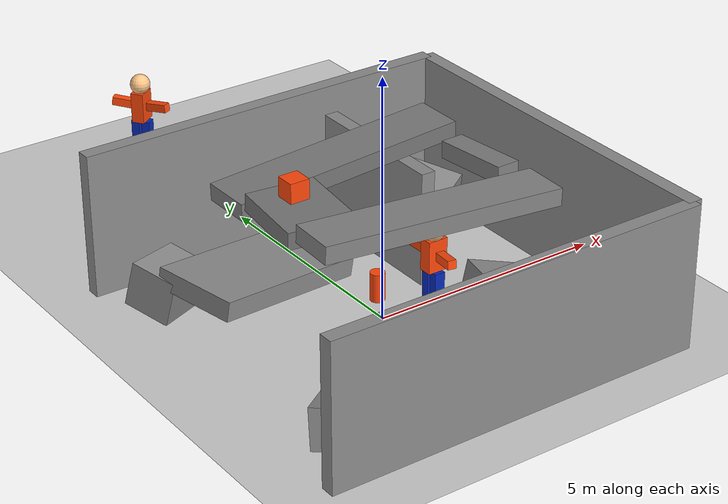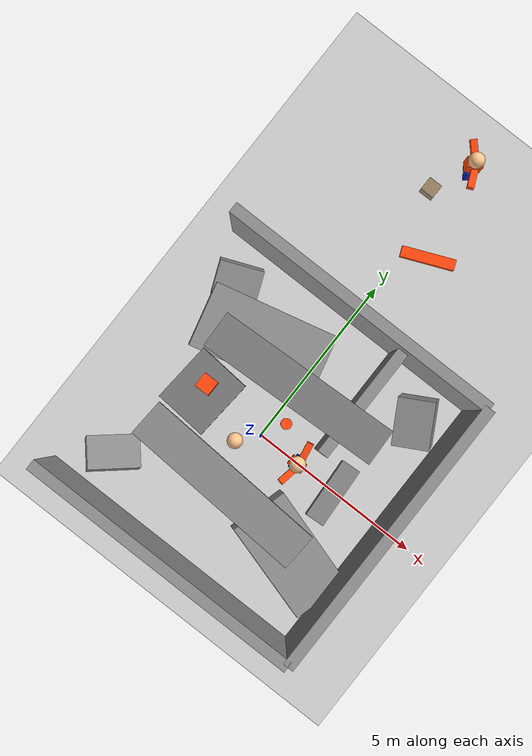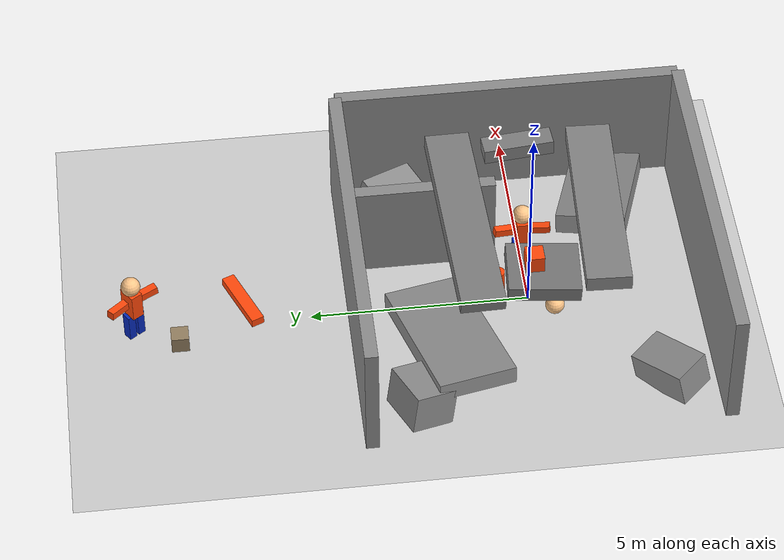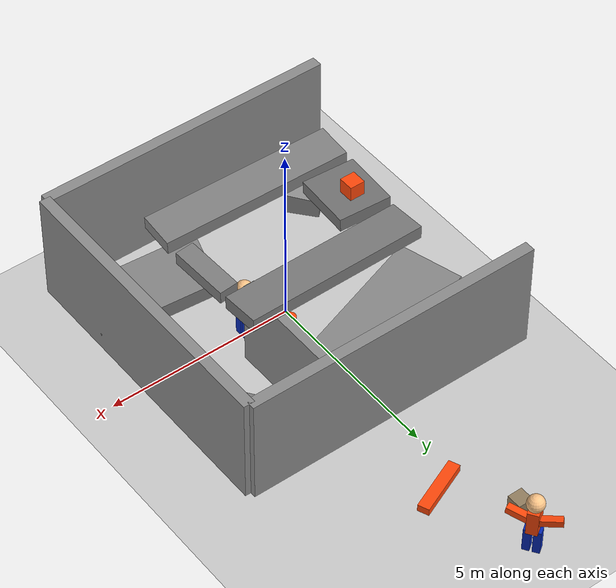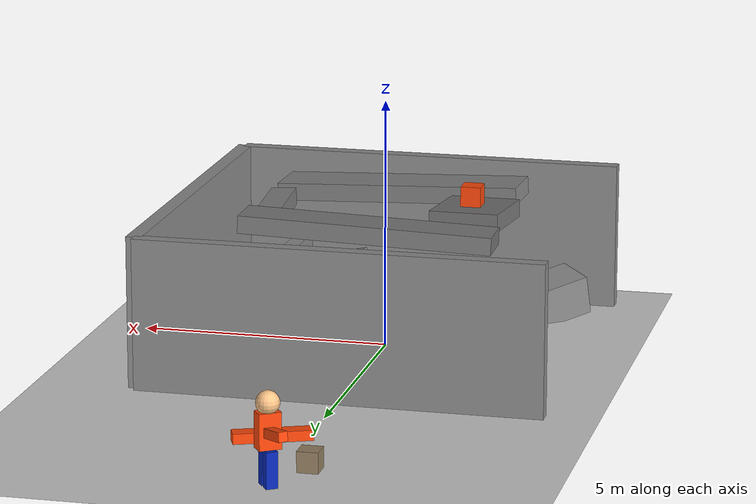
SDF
<?xml version="1.0" encoding="UTF-8"?>
<sdf version="1.9">
  <world name="collapsed_building_rescue">
    <physics type="ode">
      <max_step_size>0.004</max_step_size>
      <real_time_factor>1.0</real_time_factor>
      <real_time_update_rate>250</real_time_update_rate>
    </physics>
    <gravity>0 0 -9.8</gravity>
    <magnetic_field>6e-06 2.3e-05 -4.2e-05</magnetic_field>
    <atmosphere type="adiabatic"/>
    <scene>
      <grid>false</grid>
      <ambient>0.4 0.4 0.4 1</ambient>
      <background>0.7 0.7 0.7 1</background>
      <shadows>true</shadows>
    </scene>
    <model name="ground_plane">
      <static>true</static>
      <link name="link">
        <collision name="collision">
          <geometry>
            <plane>
              <normal>0 0 1</normal>
              <size>1 1</size>
            </plane>
          </geometry>
          <surface>
            <friction>
              <ode/>
            </friction>
            <bounce/>
            <contact/>
          </surface>
        </collision>
        <visual name="visual">
          <geometry>
            <plane>
              <normal>0 0 1</normal>
              <size>100 100</size>
            </plane>
          </geometry>
          <material>
            <ambient>0.8 0.8 0.8 1</ambient>
            <diffuse>0.8 0.8 0.8 1</diffuse>
            <specular>0.8 0.8 0.8 1</specular>
          </material>
        </visual>
        <pose>0 0 0 0 -0 0</pose>
        <inertial>
          <pose>0 0 0 0 -0 0</pose>
          <mass>1</mass>
          <inertia>
            <ixx>1</ixx>
            <ixy>0</ixy>
            <ixz>0</ixz>
            <iyy>1</iyy>
            <iyz>0</iyz>
            <izz>1</izz>
          </inertia>
        </inertial>
        <enable_wind>false</enable_wind>
      </link>
      <pose>0 0 0 0 -0 0</pose>
      <self_collide>false</self_collide>
    </model>
    <light name="sunUTC" type="directional">
      <pose>0 0 500 0 -0 0</pose>
      <cast_shadows>true</cast_shadows>
      <intensity>1</intensity>
      <direction>0.001 0.625 -0.78</direction>
      <diffuse>0.904 0.904 0.904 1</diffuse>
      <specular>0.271 0.271 0.271 1</specular>
      <attenuation>
        <range>2000</range>
        <linear>0</linear>
        <constant>1</constant>
        <quadratic>0</quadratic>
      </attenuation>
      <spot>
        <inner_angle>0</inner_angle>
        <outer_angle>0</outer_angle>
        <falloff>0</falloff>
      </spot>
    </light>
    <spherical_coordinates>
      <surface_model>EARTH_WGS84</surface_model>
      <world_frame_orientation>ENU</world_frame_orientation>
      <latitude_deg>47.397971057728974</latitude_deg>
      <longitude_deg> 8.546163739800146</longitude_deg>
      <elevation>0</elevation>
    </spherical_coordinates>
<!-- ===== COLLAPSED STRUCTURE ===== -->

    <model name="complex_left_wall">
      <static>true</static>
      <pose>0 4.0 1.5 0 0 0</pose>
      <link name="link">
        <collision name="collision">
          <geometry><box><size>8 0.3 3</size></box></geometry>
        </collision>
        <visual name="visual">
          <geometry><box><size>8 0.3 3</size></box></geometry>

          <material>
            <ambient>0.45 0.45 0.45 1</ambient>
            <diffuse>0.55 0.55 0.55 1</diffuse>
            <specular>0.15 0.15 0.15 1</specular>
          </material>
        </visual>
      </link>
    </model>

    <model name="complex_right_wall">
      <static>true</static>
      <pose>0 -4.0 1.5 0 0 0</pose>
      <link name="link">
        <collision name="collision">
          <geometry><box><size>8 0.3 3</size></box></geometry>
        </collision>
        <visual name="visual">
          <geometry><box><size>8 0.3 3</size></box></geometry>

          <material>
            <ambient>0.45 0.45 0.45 1</ambient>
            <diffuse>0.55 0.55 0.55 1</diffuse>
            <specular>0.15 0.15 0.15 1</specular>
          </material>
        </visual>
      </link>
    </model>

    <model name="complex_back_wall">
      <static>true</static>
      <pose>4.0 0 1.5 0 0 1.5708</pose>
      <link name="link">
        <collision name="collision">
          <geometry><box><size>8 0.3 3</size></box></geometry>
        </collision>
        <visual name="visual">
          <geometry><box><size>8 0.3 3</size></box></geometry>

          <material>
            <ambient>0.45 0.45 0.45 1</ambient>
            <diffuse>0.55 0.55 0.55 1</diffuse>
            <specular>0.15 0.15 0.15 1</specular>
          </material>
        </visual>
      </link>
    </model>

    <!-- Interior divider with opening -->
    <model name="interior_wall">
      <static>true</static>
      <pose>1.5 2.3 1.2 0 0 0</pose>
      <link name="link">
        <collision name="collision">
          <geometry><box><size>0.3 3.4 2.4</size></box></geometry>
        </collision>
        <visual name="visual">
          <geometry><box><size>0.3 3.4 2.4</size></box></geometry>

          <material>
            <ambient>0.45 0.45 0.45 1</ambient>
            <diffuse>0.55 0.55 0.55 1</diffuse>
            <specular>0.15 0.15 0.15 1</specular>
          </material>
        </visual>
      </link>
    </model>

    <!-- Fallen slab -->
    <model name="fallen_concrete_1">
      <static>true</static>
      <pose>-1.5 2.0 0.6 0.05 0.15 0.25</pose>
      <link name="link">
        <collision name="collision">
          <geometry><box><size>3.5 1.8 0.4</size></box></geometry>
        </collision>
        <visual name="visual">
          <geometry><box><size>3.5 1.8 0.4</size></box></geometry>

          <material>
            <ambient>0.45 0.45 0.45 1</ambient>
            <diffuse>0.55 0.55 0.55 1</diffuse>
            <specular>0.15 0.15 0.15 1</specular>
          </material>
        </visual>
      </link>
    </model>

    <model name="fallen_concrete_2">
      <static>true</static>
      <pose>2.5 -2.0 0.7 -0.1 0.25 -0.3</pose>
      <link name="link">
        <collision name="collision">
          <geometry><box><size>3.0 1.6 0.45</size></box></geometry>
        </collision>
        <visual name="visual">
          <geometry><box><size>3.0 1.6 0.45</size></box></geometry>

          <material>
            <ambient>0.45 0.45 0.45 1</ambient>
            <diffuse>0.55 0.55 0.55 1</diffuse>
            <specular>0.15 0.15 0.15 1</specular>
          </material>
        </visual>
      </link>
    </model>

    <!-- Broken roof slabs leave a camera-visible opening above the manikin. -->
    <model name="collapsed_roof_north">
      <static>true</static>
      <pose>0 1.5 2.75 0.03 -0.04 0.04</pose>
      <link name="slab">
        <collision name="collision"><geometry><box><size>5.0 1.0 0.35</size></box></geometry></collision>
        <visual name="visual">
          <geometry><box><size>5.0 1.0 0.35</size></box></geometry>
          <material><ambient>0.38 0.38 0.38 1</ambient><diffuse>0.48 0.48 0.48 1</diffuse><specular>0.12 0.12 0.12 1</specular></material>
        </visual>
      </link>
    </model>
    <model name="collapsed_roof_south">
      <static>true</static>
      <pose>0 -1.5 2.88 -0.02 0.05 -0.06</pose>
      <link name="slab">
        <collision name="collision"><geometry><box><size>5.0 1.0 0.35</size></box></geometry></collision>
        <visual name="visual">
          <geometry><box><size>5.0 1.0 0.35</size></box></geometry>
          <material><ambient>0.42 0.42 0.42 1</ambient><diffuse>0.52 0.52 0.52 1</diffuse><specular>0.12 0.12 0.12 1</specular></material>
        </visual>
      </link>
    </model>
    <model name="collapsed_roof_west">
      <static>true</static>
      <pose>-1.8 0 2.82 0.04 0.02 -0.08</pose>
      <link name="slab">
        <collision name="collision"><geometry><box><size>1.4 1.6 0.35</size></box></geometry></collision>
        <visual name="visual">
          <geometry><box><size>1.4 1.6 0.35</size></box></geometry>
          <material><ambient>0.36 0.36 0.36 1</ambient><diffuse>0.46 0.46 0.46 1</diffuse><specular>0.12 0.12 0.12 1</specular></material>
        </visual>
      </link>
    </model>
    <model name="collapsed_roof_east">
      <static>true</static>
      <pose>2.25 0 2.72 -0.04 0.03 0.06</pose>
      <link name="slab">
        <collision name="collision"><geometry><box><size>0.5 1.6 0.35</size></box></geometry></collision>
        <visual name="visual">
          <geometry><box><size>0.5 1.6 0.35</size></box></geometry>
          <material><ambient>0.40 0.40 0.40 1</ambient><diffuse>0.50 0.50 0.50 1</diffuse><specular>0.12 0.12 0.12 1</specular></material>
        </visual>
      </link>
    </model>

    <!-- Rubble -->
    <model name="rubble_a">
      <static>true</static>
      <pose>-3.0 2.8 0.45 0.2 0.1 0.4</pose>
      <link name="link">
        <collision name="collision">
          <geometry><box><size>1.2 1.0 0.9</size></box></geometry>
        </collision>
        <visual name="visual">
          <geometry><box><size>1.2 1.0 0.9</size></box></geometry>

          <material>
            <ambient>0.45 0.45 0.45 1</ambient>
            <diffuse>0.55 0.55 0.55 1</diffuse>
            <specular>0.15 0.15 0.15 1</specular>
          </material>
        </visual>
      </link>
    </model>

    <model name="rubble_b">
      <static>true</static>
      <pose>-2.8 -2.8 0.4 -0.1 0.2 0.7</pose>
      <link name="link">
        <collision name="collision">
          <geometry><box><size>1.4 0.9 0.8</size></box></geometry>
        </collision>
        <visual name="visual">
          <geometry><box><size>1.4 0.9 0.8</size></box></geometry>

          <material>
            <ambient>0.45 0.45 0.45 1</ambient>
            <diffuse>0.55 0.55 0.55 1</diffuse>
            <specular>0.15 0.15 0.15 1</specular>
          </material>
        </visual>
      </link>
    </model>

    <model name="rubble_c">
      <static>true</static>
      <pose>3.0 2.8 0.5 0.15 -0.2 0.5</pose>
      <link name="link">
        <collision name="collision">
          <geometry><box><size>1.0 1.3 1.0</size></box></geometry>
        </collision>
        <visual name="visual">
          <geometry><box><size>1.0 1.3 1.0</size></box></geometry>

          <material>
            <ambient>0.45 0.45 0.45 1</ambient>
            <diffuse>0.55 0.55 0.55 1</diffuse>
            <specular>0.15 0.15 0.15 1</specular>
          </material>
        </visual>
      </link>
    </model>

    <!-- Static rescue manikin, visible from above through the roof opening. -->
    <model name="survivor_target">
      <static>true</static>
      <pose>1.2 0 0 0 0 0</pose>
      <link name="manikin">
        <pose>0 0 0 0 0 0</pose>
        <collision name="collision">
          <pose>0 0 0.85 0 0 0</pose>
          <geometry><cylinder><radius>0.24</radius><length>1.55</length></cylinder></geometry>
        </collision>
        <visual name="torso">
          <pose>0 0 1.03 0 0 0</pose><geometry><box><size>0.42 0.28 0.68</size></box></geometry>
          <material><ambient>0.95 0.18 0.025 1</ambient><diffuse>1.0 0.28 0.04 1</diffuse><specular>0.1 0.1 0.1 1</specular></material>
        </visual>
        <visual name="head">
          <pose>0 0 1.53 0 0 0</pose><geometry><sphere><radius>0.22</radius></sphere></geometry>
          <material><ambient>0.95 0.68 0.42 1</ambient><diffuse>1.0 0.78 0.54 1</diffuse><specular>0.1 0.1 0.1 1</specular></material>
        </visual>
        <visual name="left_arm">
          <pose>0 0.34 1.05 0.12 0 0.18</pose><geometry><box><size>0.18 0.62 0.18</size></box></geometry>
          <material><ambient>0.95 0.18 0.025 1</ambient><diffuse>1.0 0.28 0.04 1</diffuse></material>
        </visual>
        <visual name="right_arm">
          <pose>0 -0.34 1.05 -0.12 0 -0.18</pose><geometry><box><size>0.18 0.62 0.18</size></box></geometry>
          <material><ambient>0.95 0.18 0.025 1</ambient><diffuse>1.0 0.28 0.04 1</diffuse></material>
        </visual>
        <visual name="left_leg">
          <pose>0 0.12 0.34 0 0 0</pose><geometry><box><size>0.22 0.18 0.68</size></box></geometry>
          <material><ambient>0.015 0.08 0.38 1</ambient><diffuse>0.025 0.16 0.72 1</diffuse></material>
        </visual>
        <visual name="right_leg">
          <pose>0 -0.12 0.34 0 0 0</pose><geometry><box><size>0.22 0.18 0.68</size></box></geometry>
          <material><ambient>0.015 0.08 0.38 1</ambient><diffuse>0.025 0.16 0.72 1</diffuse></material>
        </visual>
      </link>
    </model>

    <!-- Static rescue manikin, visible from above through the roof opening. -->
    <model name="survivor_outdoor">
      <static>true</static>
      <pose>0.0 9.0 0 0 0 0.6</pose>
      <link name="manikin">
        <pose>0 0 0 0 0 0</pose>
        <collision name="collision">
          <pose>0 0 0.85 0 0 0</pose>
          <geometry><cylinder><radius>0.24</radius><length>1.55</length></cylinder></geometry>
        </collision>
        <visual name="torso">
          <pose>0 0 1.03 0 0 0</pose><geometry><box><size>0.42 0.28 0.68</size></box></geometry>
          <material><ambient>0.95 0.18 0.025 1</ambient><diffuse>1.0 0.28 0.04 1</diffuse><specular>0.1 0.1 0.1 1</specular></material>
        </visual>
        <visual name="head">
          <pose>0 0 1.53 0 0 0</pose><geometry><sphere><radius>0.22</radius></sphere></geometry>
          <material><ambient>0.95 0.68 0.42 1</ambient><diffuse>1.0 0.78 0.54 1</diffuse><specular>0.1 0.1 0.1 1</specular></material>
        </visual>
        <visual name="left_arm">
          <pose>0 0.34 1.05 0.12 0 0.18</pose><geometry><box><size>0.18 0.62 0.18</size></box></geometry>
          <material><ambient>0.95 0.18 0.025 1</ambient><diffuse>1.0 0.28 0.04 1</diffuse></material>
        </visual>
        <visual name="right_arm">
          <pose>0 -0.34 1.05 -0.12 0 -0.18</pose><geometry><box><size>0.18 0.62 0.18</size></box></geometry>
          <material><ambient>0.95 0.18 0.025 1</ambient><diffuse>1.0 0.28 0.04 1</diffuse></material>
        </visual>
        <visual name="left_leg">
          <pose>0 0.12 0.34 0 0 0</pose><geometry><box><size>0.22 0.18 0.68</size></box></geometry>
          <material><ambient>0.015 0.08 0.38 1</ambient><diffuse>0.025 0.16 0.72 1</diffuse></material>
        </visual>
        <visual name="right_leg">
          <pose>0 -0.12 0.34 0 0 0</pose><geometry><box><size>0.22 0.18 0.68</size></box></geometry>
          <material><ambient>0.015 0.08 0.38 1</ambient><diffuse>0.025 0.16 0.72 1</diffuse></material>
        </visual>
      </link>
    </model>

    <model name="orange_cylinder">
      <static>true</static>
      <pose>0.35 0.65 0.3 0 0 0</pose>
      <link name="link">
        <collision name="collision"><geometry><cylinder><radius>0.15</radius><length>0.6</length></cylinder></geometry></collision>
        <visual name="visual"><geometry><cylinder><radius>0.15</radius><length>0.6</length></cylinder></geometry><material><ambient>0.950 0.210 0.030 1</ambient><diffuse>1.0 0.28 0.04 1</diffuse><specular>0.1 0.1 0.1 1</specular></material></visual>
      </link>
    </model>

    <model name="skin_sphere">
      <static>true</static>
      <pose>-0.45 -0.55 0.22 0 0 0</pose>
      <link name="link">
        <collision name="collision"><geometry><sphere><radius>0.22</radius></sphere></geometry></collision>
        <visual name="visual"><geometry><sphere><radius>0.22</radius></sphere></geometry><material><ambient>0.950 0.585 0.405 1</ambient><diffuse>1.0 0.78 0.54 1</diffuse><specular>0.1 0.1 0.1 1</specular></material></visual>
      </link>
    </model>

    <model name="orange_box_roof">
      <static>true</static>
      <pose>-1.8 0.2 3.25 0 0 0.0</pose>
      <link name="link">
        <collision name="collision"><geometry><box><size>0.4 0.4 0.4</size></box></geometry></collision>
        <visual name="visual"><geometry><box><size>0.4 0.4 0.4</size></box></geometry><material><ambient>0.950 0.210 0.030 1</ambient><diffuse>1.0 0.28 0.04 1</diffuse><specular>0.1 0.1 0.1 1</specular></material></visual>
      </link>
    </model>

    <model name="orange_plank_outside">
      <static>true</static>
      <pose>0.6 6.5 0.1 0 0 0.4</pose>
      <link name="link">
        <collision name="collision"><geometry><box><size>1.5 0.3 0.2</size></box></geometry></collision>
        <visual name="visual"><geometry><box><size>1.5 0.3 0.2</size></box></geometry><material><ambient>0.950 0.210 0.030 1</ambient><diffuse>1.0 0.28 0.04 1</diffuse><specular>0.1 0.1 0.1 1</specular></material></visual>
      </link>
    </model>

    <model name="tan_box_outside">
      <static>true</static>
      <pose>-0.5 8.0 0.2 0 0 0.0</pose>
      <link name="link">
        <collision name="collision"><geometry><box><size>0.4 0.4 0.4</size></box></geometry></collision>
        <visual name="visual"><geometry><box><size>0.4 0.4 0.4</size></box></geometry><material><ambient>0.551 0.375 0.285 1</ambient><diffuse>0.58 0.5 0.38 1</diffuse><specular>0.1 0.1 0.1 1</specular></material></visual>
      </link>
    </model>

</world>
</sdf>
